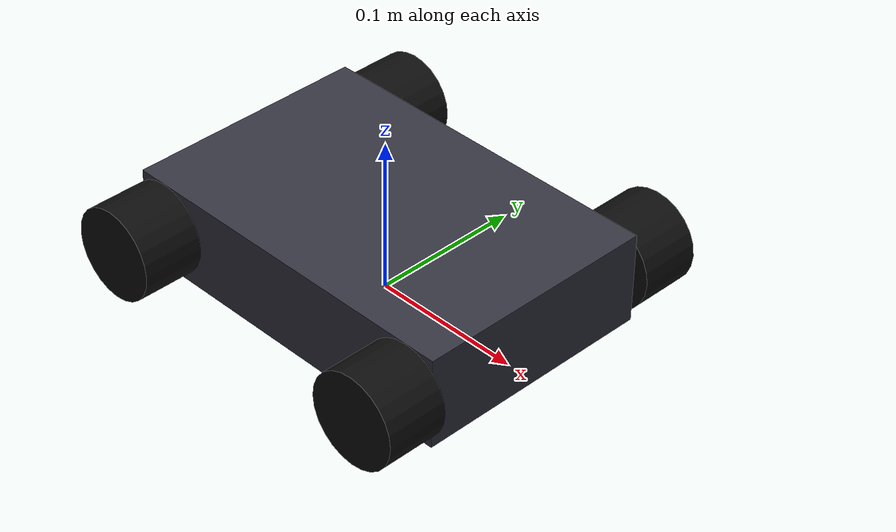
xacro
<?xml version="1.0"?>
<robot xmlns:xacro="http://www.ros.org/wiki/xacro" name="smartcar">

  <!-- ===== 可覆盖参数（launch 通过 xacro 命令行传入） ===== -->
  <xacro:arg name="use_mock_hardware" default="true"/>
  <xacro:arg name="serial_port" default="/dev/ttyUSB0"/>
  <xacro:arg name="baud_rate" default="115200"/>

  <!-- ===== 几何常量（单位 m）===== -->
  <xacro:property name="wheel_radius" value="0.03"/>   <!-- 麦轮 Ø60mm → r=0.03 -->
  <xacro:property name="wheel_width" value="0.04"/>    <!-- 轮宽，仅用于可视化 -->
  <xacro:property name="wheelbase" value="0.20"/>      <!-- 前后轴距（占位，实测替换）-->
  <xacro:property name="track_width" value="0.20"/>    <!-- 左右轮距（占位，实测替换）-->
  <xacro:property name="base_length" value="0.24"/>
  <xacro:property name="base_width" value="0.16"/>
  <xacro:property name="base_height" value="0.06"/>
  <xacro:property name="base_mass" value="2.0"/>
  <xacro:property name="wheel_mass" value="0.15"/>

  <!-- ===== 引入 ros2_control 硬件描述 ===== -->
  <xacro:include filename="$(find smartcar_bringup)/urdf/smartcar.ros2_control.xacro"/>

  <!-- ================= 底盘 ================= -->
  <!-- base_footprint：地面投影根坐标系，里程计的父系惯例落脚点 -->
  <link name="base_footprint"/>

  <link name="base_link">
    <visual>
      <origin xyz="0 0 0" rpy="0 0 0"/>
      <geometry>
        <box size="${base_length} ${base_width} ${base_height}"/>
      </geometry>
      <material name="chassis_gray">
        <color rgba="0.2 0.2 0.25 1.0"/>
      </material>
    </visual>
    <collision>
      <geometry>
        <box size="${base_length} ${base_width} ${base_height}"/>
      </geometry>
    </collision>
    <inertial>
      <mass value="${base_mass}"/>
      <!-- 长方体惯量：I = m/12 * (a^2 + b^2) -->
      <inertia
        ixx="${base_mass/12.0*(base_width*base_width + base_height*base_height)}"
        iyy="${base_mass/12.0*(base_length*base_length + base_height*base_height)}"
        izz="${base_mass/12.0*(base_length*base_length + base_width*base_width)}"
        ixy="0" ixz="0" iyz="0"/>
    </inertial>
  </link>

  <joint name="base_footprint_joint" type="fixed">
    <parent link="base_footprint"/>
    <child link="base_link"/>
    <!-- 底盘中心离地 = 轮半径 + 少量底盘厚度余量 -->
    <origin xyz="0 0 ${wheel_radius}" rpy="0 0 0"/>
  </joint>

  <!-- ================= 轮子宏 ================= -->
  <!-- x_sign/y_sign: 前(+)/后(-)，左(+)/右(-)。轮绕 y 轴旋转（axis 0 1 0）。-->
  <xacro:macro name="wheel" params="prefix x_sign y_sign">
    <link name="${prefix}_wheel_link">
      <visual>
        <origin xyz="0 0 0" rpy="${pi/2} 0 0"/>
        <geometry>
          <cylinder radius="${wheel_radius}" length="${wheel_width}"/>
        </geometry>
        <material name="wheel_black">
          <color rgba="0.05 0.05 0.05 1.0"/>
        </material>
      </visual>
      <collision>
        <origin xyz="0 0 0" rpy="${pi/2} 0 0"/>
        <geometry>
          <cylinder radius="${wheel_radius}" length="${wheel_width}"/>
        </geometry>
      </collision>
      <inertial>
        <mass value="${wheel_mass}"/>
        <!-- 圆柱绕自转轴 izz = m*r^2/2；径向 = m/12*(3r^2 + h^2) -->
        <inertia
          ixx="${wheel_mass/12.0*(3*wheel_radius*wheel_radius + wheel_width*wheel_width)}"
          iyy="${wheel_mass/12.0*(3*wheel_radius*wheel_radius + wheel_width*wheel_width)}"
          izz="${wheel_mass*wheel_radius*wheel_radius/2.0}"
          ixy="0" ixz="0" iyz="0"/>
      </inertial>
    </link>

    <joint name="${prefix}_wheel_joint" type="continuous">
      <parent link="base_link"/>
      <child link="${prefix}_wheel_link"/>
      <origin xyz="${x_sign*wheelbase/2.0} ${y_sign*track_width/2.0} 0"
              rpy="0 0 0"/>
      <axis xyz="0 1 0"/>
    </joint>
  </xacro:macro>

  <!-- 四个轮子：命名与关节名严格对应全局约束 -->
  <xacro:wheel prefix="front_left"  x_sign="1"  y_sign="1"/>
  <xacro:wheel prefix="front_right" x_sign="1"  y_sign="-1"/>
  <xacro:wheel prefix="rear_left"   x_sign="-1" y_sign="1"/>
  <xacro:wheel prefix="rear_right"  x_sign="-1" y_sign="-1"/>

  <!-- ================= 挂载 ros2_control ================= -->
  <xacro:smartcar_ros2_control
      name="smartcar_system"
      use_mock_hardware="$(arg use_mock_hardware)"
      serial_port="$(arg serial_port)"
      baud_rate="$(arg baud_rate)"
      wheel_radius="${wheel_radius}"/>

</robot>
